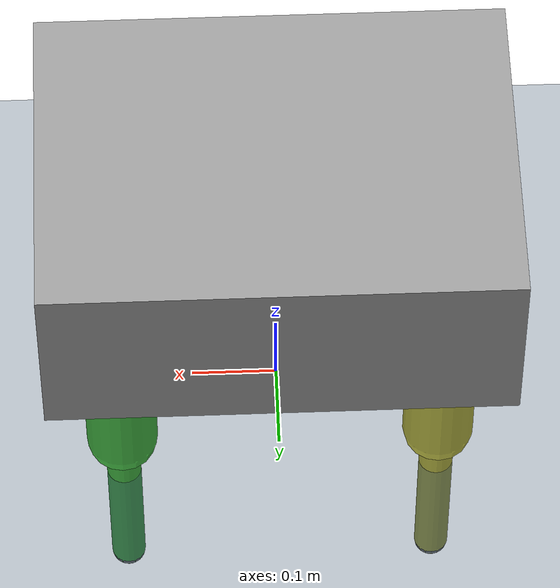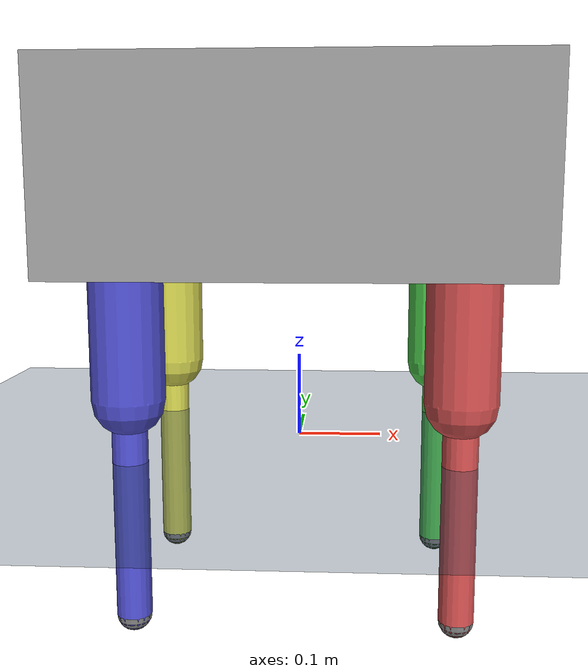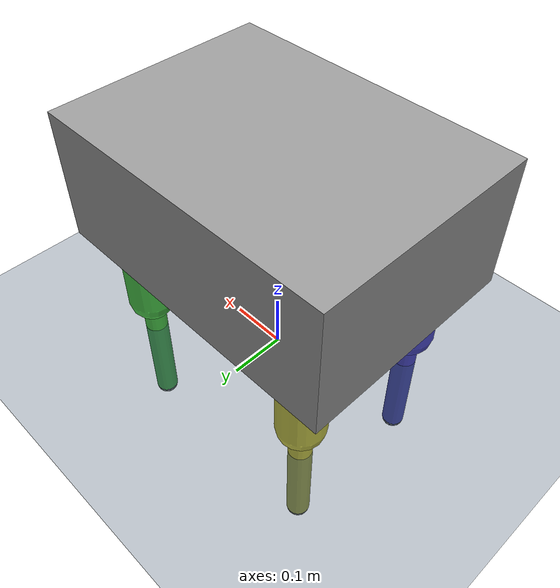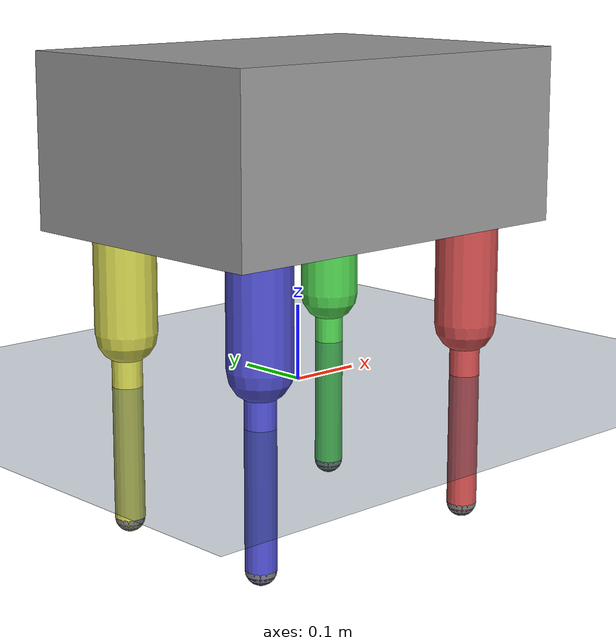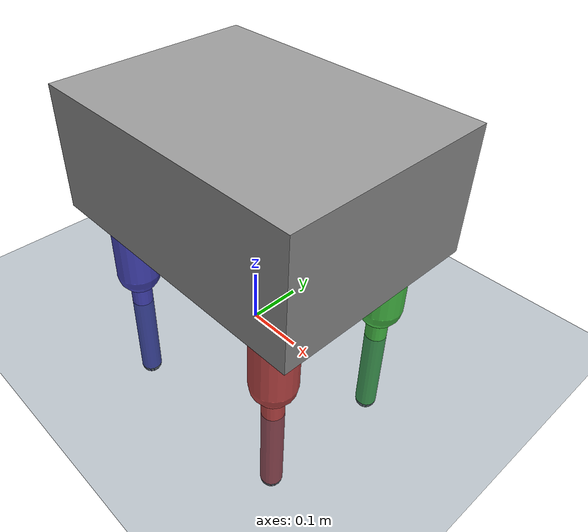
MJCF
<?xml version="1.0" ?>
<mujoco model="Go1 Quadruped Robot">
  <!-- Compiler settings -->
  <compiler angle="radian" meshdir="meshes/" texturedir="textures/"/>

  <!-- Size settings -->
  <size nconmax="100" njmax="1000" nstack="300000"/>

  <!-- Options -->
  <option gravity="0 0 -9.81" timestep="0.002" viscosity="0" density="0"/>

  <!-- Visual settings -->
  <visual>
    <rgba haze="0.15 0.25 0.35 1"/>
    <quality shadowsize="2048" offsamples="8"/>
    <map force="0.1" fogstart="3" fogend="10" zfar="40"/>
  </visual>

  <!-- Assets -->
  <asset>
    <!-- Basic materials -->
    <material name="blue" rgba="0.2 0.2 0.8 1"/>
    <material name="red" rgba="0.8 0.2 0.2 1"/>
    <material name="green" rgba="0.2 0.8 0.2 1"/>
    <material name="black" rgba="0.2 0.2 0.2 1"/>
    <material name="white" rgba="0.9 0.9 0.9 1"/>

    <!-- Ground texture -->
    <texture name="groundplane" type="2d" builtin="checker" rgb1="0.2 0.3 0.4" rgb2="0.1 0.2 0.3" width="100" height="100"/>
    <material name="groundplane" texture="groundplane" texrepeat="5 5" reflectance="0.2"/>
  </asset>

  <!-- World body -->
  <worldbody>
    <!-- Ground plane -->
    <geom name="ground" type="plane" size="40 40 0.1" material="groundplane"/>

    <!-- Lighting -->
    <light name="spotlight" mode="targetbodycom" target="torso" pos="0 -1 2"/>

    <!-- Go1 Robot -->
    <body name="torso" pos="0 0 0.32">
      <!-- Main body -->
      <geom name="torso" type="box" size="0.267 0.194 0.114" rgba="0.6 0.6 0.6 1" mass="4.713"/>
      <inertial pos="0 0 0" mass="4.713" diaginertia="0.07335 0.25068 0.25447"/>

      <!-- IMU sensor -->
      <site name="imu" pos="0 0 0" size="0.01"/>

      <!-- Front Right Hip -->
      <body name="FR_hip" pos="0.183 -0.047 0">
        <joint name="FR_hip_joint" type="hinge" axis="1 0 0" range="-0.873 0.873" damping="0.1"/>
        <geom name="FR_hip" type="box" size="0.041 0.020 0.041" rgba="0.8 0.3 0.3 1" mass="0.696"/>
        <inertial pos="0 0 0" mass="0.696" diaginertia="0.000469246 0.000807786 0.000552929"/>

        <!-- Front Right Thigh -->
        <body name="FR_thigh" pos="0 -0.083 0">
          <joint name="FR_thigh_joint" type="hinge" axis="0 1 0" range="-2.966 4.5" damping="0.1"/>
          <geom name="FR_thigh" type="capsule" fromto="0 0 0 0 0 -0.25" size="0.041" rgba="0.8 0.3 0.3 1" mass="1.013"/>
          <inertial pos="0 0 -0.125" mass="1.013" diaginertia="0.005529065 0.005529065 0.000681723"/>

          <!-- Front Right Calf -->
          <body name="FR_calf" pos="0 0 -0.25">
            <joint name="FR_calf_joint" type="hinge" axis="0 1 0" range="-2.77507 -0.645772" damping="0.1"/>
            <geom name="FR_calf" type="capsule" fromto="0 0 0 0 0 -0.25" size="0.02" rgba="0.8 0.3 0.3 1" mass="0.226"/>
            <inertial pos="0 0 -0.125" mass="0.226" diaginertia="0.001367788 0.001367788 0.000018050"/>

            <!-- Front Right Foot -->
            <body name="FR_foot" pos="0 0 -0.25">
              <geom name="FR_foot" type="sphere" size="0.02" rgba="0.5 0.5 0.5 1" mass="0.06"/>
              <inertial pos="0 0 0" mass="0.06" diaginertia="0.000024 0.000024 0.000024"/>
            </body>
          </body>
        </body>
      </body>

      <!-- Front Left Hip -->
      <body name="FL_hip" pos="0.183 0.047 0">
        <joint name="FL_hip_joint" type="hinge" axis="1 0 0" range="-0.873 0.873" damping="0.1"/>
        <geom name="FL_hip" type="box" size="0.041 0.020 0.041" rgba="0.3 0.8 0.3 1" mass="0.696"/>
        <inertial pos="0 0 0" mass="0.696" diaginertia="0.000469246 0.000807786 0.000552929"/>

        <!-- Front Left Thigh -->
        <body name="FL_thigh" pos="0 0.083 0">
          <joint name="FL_thigh_joint" type="hinge" axis="0 1 0" range="-2.966 4.5" damping="0.1"/>
          <geom name="FL_thigh" type="capsule" fromto="0 0 0 0 0 -0.25" size="0.041" rgba="0.3 0.8 0.3 1" mass="1.013"/>
          <inertial pos="0 0 -0.125" mass="1.013" diaginertia="0.005529065 0.005529065 0.000681723"/>

          <!-- Front Left Calf -->
          <body name="FL_calf" pos="0 0 -0.25">
            <joint name="FL_calf_joint" type="hinge" axis="0 1 0" range="-2.77507 -0.645772" damping="0.1"/>
            <geom name="FL_calf" type="capsule" fromto="0 0 0 0 0 -0.25" size="0.02" rgba="0.3 0.8 0.3 1" mass="0.226"/>
            <inertial pos="0 0 -0.125" mass="0.226" diaginertia="0.001367788 0.001367788 0.000018050"/>

            <!-- Front Left Foot -->
            <body name="FL_foot" pos="0 0 -0.25">
              <geom name="FL_foot" type="sphere" size="0.02" rgba="0.5 0.5 0.5 1" mass="0.06"/>
              <inertial pos="0 0 0" mass="0.06" diaginertia="0.000024 0.000024 0.000024"/>
            </body>
          </body>
        </body>
      </body>

      <!-- Rear Right Hip -->
      <body name="RR_hip" pos="-0.183 -0.047 0">
        <joint name="RR_hip_joint" type="hinge" axis="1 0 0" range="-0.873 0.873" damping="0.1"/>
        <geom name="RR_hip" type="box" size="0.041 0.020 0.041" rgba="0.3 0.3 0.8 1" mass="0.696"/>
        <inertial pos="0 0 0" mass="0.696" diaginertia="0.000469246 0.000807786 0.000552929"/>

        <!-- Rear Right Thigh -->
        <body name="RR_thigh" pos="0 -0.083 0">
          <joint name="RR_thigh_joint" type="hinge" axis="0 1 0" range="-2.966 4.5" damping="0.1"/>
          <geom name="RR_thigh" type="capsule" fromto="0 0 0 0 0 -0.25" size="0.041" rgba="0.3 0.3 0.8 1" mass="1.013"/>
          <inertial pos="0 0 -0.125" mass="1.013" diaginertia="0.005529065 0.005529065 0.000681723"/>

          <!-- Rear Right Calf -->
          <body name="RR_calf" pos="0 0 -0.25">
            <joint name="RR_calf_joint" type="hinge" axis="0 1 0" range="-2.77507 -0.645772" damping="0.1"/>
            <geom name="RR_calf" type="capsule" fromto="0 0 0 0 0 -0.25" size="0.02" rgba="0.3 0.3 0.8 1" mass="0.226"/>
            <inertial pos="0 0 -0.125" mass="0.226" diaginertia="0.001367788 0.001367788 0.000018050"/>

            <!-- Rear Right Foot -->
            <body name="RR_foot" pos="0 0 -0.25">
              <geom name="RR_foot" type="sphere" size="0.02" rgba="0.5 0.5 0.5 1" mass="0.06"/>
              <inertial pos="0 0 0" mass="0.06" diaginertia="0.000024 0.000024 0.000024"/>
            </body>
          </body>
        </body>
      </body>

      <!-- Rear Left Hip -->
      <body name="RL_hip" pos="-0.183 0.047 0">
        <joint name="RL_hip_joint" type="hinge" axis="1 0 0" range="-0.873 0.873" damping="0.1"/>
        <geom name="RL_hip" type="box" size="0.041 0.020 0.041" rgba="0.8 0.8 0.3 1" mass="0.696"/>
        <inertial pos="0 0 0" mass="0.696" diaginertia="0.000469246 0.000807786 0.000552929"/>

        <!-- Rear Left Thigh -->
        <body name="RL_thigh" pos="0 0.083 0">
          <joint name="RL_thigh_joint" type="hinge" axis="0 1 0" range="-2.966 4.5" damping="0.1"/>
          <geom name="RL_thigh" type="capsule" fromto="0 0 0 0 0 -0.25" size="0.041" rgba="0.8 0.8 0.3 1" mass="1.013"/>
          <inertial pos="0 0 -0.125" mass="1.013" diaginertia="0.005529065 0.005529065 0.000681723"/>

          <!-- Rear Left Calf -->
          <body name="RL_calf" pos="0 0 -0.25">
            <joint name="RL_calf_joint" type="hinge" axis="0 1 0" range="-2.77507 -0.645772" damping="0.1"/>
            <geom name="RL_calf" type="capsule" fromto="0 0 0 0 0 -0.25" size="0.02" rgba="0.8 0.8 0.3 1" mass="0.226"/>
            <inertial pos="0 0 -0.125" mass="0.226" diaginertia="0.001367788 0.001367788 0.000018050"/>

            <!-- Rear Left Foot -->
            <body name="RL_foot" pos="0 0 -0.25">
              <geom name="RL_foot" type="sphere" size="0.02" rgba="0.5 0.5 0.5 1" mass="0.06"/>
              <inertial pos="0 0 0" mass="0.06" diaginertia="0.000024 0.000024 0.000024"/>
            </body>
          </body>
        </body>
      </body>
    </body>
  </worldbody>

  <!-- Actuators -->
  <actuator>
    <!-- Hip joints -->
    <motor name="FR_hip_motor" joint="FR_hip_joint" gear="33.5" ctrllimited="true" ctrlrange="-33.5 33.5"/>
    <motor name="FL_hip_motor" joint="FL_hip_joint" gear="33.5" ctrllimited="true" ctrlrange="-33.5 33.5"/>
    <motor name="RR_hip_motor" joint="RR_hip_joint" gear="33.5" ctrllimited="true" ctrlrange="-33.5 33.5"/>
    <motor name="RL_hip_motor" joint="RL_hip_joint" gear="33.5" ctrllimited="true" ctrlrange="-33.5 33.5"/>

    <!-- Thigh joints -->
    <motor name="FR_thigh_motor" joint="FR_thigh_joint" gear="33.5" ctrllimited="true" ctrlrange="-33.5 33.5"/>
    <motor name="FL_thigh_motor" joint="FL_thigh_joint" gear="33.5" ctrllimited="true" ctrlrange="-33.5 33.5"/>
    <motor name="RR_thigh_motor" joint="RR_thigh_joint" gear="33.5" ctrllimited="true" ctrlrange="-33.5 33.5"/>
    <motor name="RL_thigh_motor" joint="RL_thigh_joint" gear="33.5" ctrllimited="true" ctrlrange="-33.5 33.5"/>

    <!-- Calf joints -->
    <motor name="FR_calf_motor" joint="FR_calf_joint" gear="33.5" ctrllimited="true" ctrlrange="-33.5 33.5"/>
    <motor name="FL_calf_motor" joint="FL_calf_joint" gear="33.5" ctrllimited="true" ctrlrange="-33.5 33.5"/>
    <motor name="RR_calf_motor" joint="RR_calf_joint" gear="33.5" ctrllimited="true" ctrlrange="-33.5 33.5"/>
    <motor name="RL_calf_motor" joint="RL_calf_joint" gear="33.5" ctrllimited="true" ctrlrange="-33.5 33.5"/>
  </actuator>

  <!-- Sensors -->
  <sensor>
    <!-- Joint position sensors -->
    <jointpos name="FR_hip_pos" joint="FR_hip_joint"/>
    <jointpos name="FL_hip_pos" joint="FL_hip_joint"/>
    <jointpos name="RR_hip_pos" joint="RR_hip_joint"/>
    <jointpos name="RL_hip_pos" joint="RL_hip_joint"/>
    <jointpos name="FR_thigh_pos" joint="FR_thigh_joint"/>
    <jointpos name="FL_thigh_pos" joint="FL_thigh_joint"/>
    <jointpos name="RR_thigh_pos" joint="RR_thigh_joint"/>
    <jointpos name="RL_thigh_pos" joint="RL_thigh_joint"/>
    <jointpos name="FR_calf_pos" joint="FR_calf_joint"/>
    <jointpos name="FL_calf_pos" joint="FL_calf_joint"/>
    <jointpos name="RR_calf_pos" joint="RR_calf_joint"/>
    <jointpos name="RL_calf_pos" joint="RL_calf_joint"/>

    <!-- Joint velocity sensors -->
    <jointvel name="FR_hip_vel" joint="FR_hip_joint"/>
    <jointvel name="FL_hip_vel" joint="FL_hip_joint"/>
    <jointvel name="RR_hip_vel" joint="RR_hip_joint"/>
    <jointvel name="RL_hip_vel" joint="RL_hip_joint"/>
    <jointvel name="FR_thigh_vel" joint="FR_thigh_joint"/>
    <jointvel name="FL_thigh_vel" joint="FL_thigh_joint"/>
    <jointvel name="RR_thigh_vel" joint="RR_thigh_joint"/>
    <jointvel name="RL_thigh_vel" joint="RL_thigh_joint"/>
    <jointvel name="FR_calf_vel" joint="FR_calf_joint"/>
    <jointvel name="FL_calf_vel" joint="FL_calf_joint"/>
    <jointvel name="RR_calf_vel" joint="RR_calf_joint"/>
    <jointvel name="RL_calf_vel" joint="RL_calf_joint"/>

    <!-- IMU sensor -->
    <accelerometer name="imu_accel" site="imu"/>
    <gyro name="imu_gyro" site="imu"/>
  </sensor>
</mujoco>
